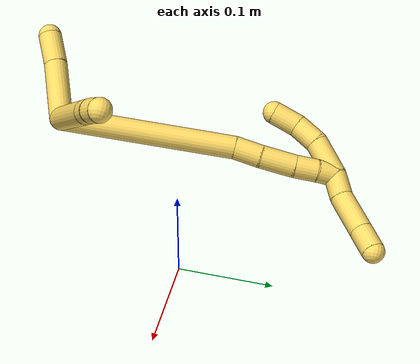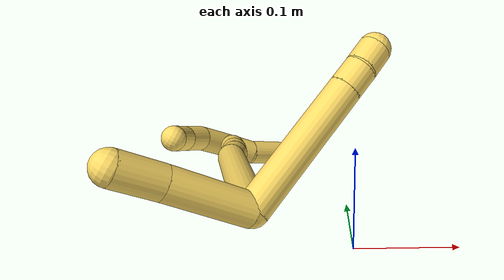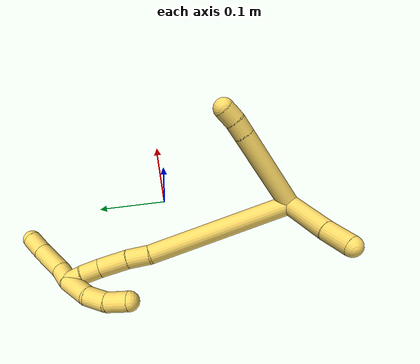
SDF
<sdf version="1.7">
 <world name="default">
  <model name="5">
   <static>0</static>
   <link name="5">
    <collision name="collision-cylinder-e_1_2_8">
     <pose>0.039223 0.036993 -0.009918 -1.83273 0.797313 -1.00416</pose>
     <geometry><cylinder><radius>0.0125</radius><length>0.109642</length></cylinder></geometry>
     <surface>
      <friction><ode><mu>1.16</mu><mu2>1.16</mu2><slip1>0</slip1><slip2>0</slip2></ode></friction>
      <contact><ode><kp>1e+06</kp><kd>1</kd><max_vel>0</max_vel><min_depth>0.001</min_depth></ode></contact>
     </surface>
    </collision>
    <visual name="visual-cylinder-e_1_2_8">
     <pose>0.039223 0.036993 -0.009918 -1.83273 0.797313 -1.00416</pose>
     <geometry><cylinder><radius>0.0125</radius><length>0.109642</length></cylinder></geometry>
     <material><ambient>1 0.858824 0.4 1</ambient></material>
    </visual>
    <collision name="collision-cylinder-e_2_8_9">
     <pose>0.08571 0.080851 -0.02167 -1.83203 0.796386 -1.00246</pose>
     <geometry><cylinder><radius>0.0125</radius><length>0.020322</length></cylinder></geometry>
     <surface>
      <friction><ode><mu>1.16</mu><mu2>1.16</mu2><slip1>0</slip1><slip2>0</slip2></ode></friction>
      <contact><ode><kp>1e+06</kp><kd>1</kd><max_vel>0</max_vel><min_depth>0.001</min_depth></ode></contact>
     </surface>
    </collision>
    <visual name="visual-cylinder-e_2_8_9">
     <pose>0.08571 0.080851 -0.02167 -1.83203 0.796386 -1.00246</pose>
     <geometry><cylinder><radius>0.0125</radius><length>0.020322</length></cylinder></geometry>
     <material><ambient>1 0.858824 0.4 1</ambient></material>
    </visual>
    <collision name="collision-cylinder-e_3_9_6">
     <pose>0.099061 0.095472 -0.025278 -1.79552 0.653112 -0.80346</pose>
     <geometry><cylinder><radius>0.0125</radius><length>0.020036</length></cylinder></geometry>
     <surface>
      <friction><ode><mu>1.16</mu><mu2>1.16</mu2><slip1>0</slip1><slip2>0</slip2></ode></friction>
      <contact><ode><kp>1e+06</kp><kd>1</kd><max_vel>0</max_vel><min_depth>0.001</min_depth></ode></contact>
     </surface>
    </collision>
    <visual name="visual-cylinder-e_3_9_6">
     <pose>0.099061 0.095472 -0.025278 -1.79552 0.653112 -0.80346</pose>
     <geometry><cylinder><radius>0.0125</radius><length>0.020036</length></cylinder></geometry>
     <material><ambient>1 0.858824 0.4 1</ambient></material>
    </visual>
    <collision name="collision-cylinder-e_1_2_10">
     <pose>0.001132 -0.01065 0.030559 0.335345 0.034968 0.005919</pose>
     <geometry><cylinder><radius>0.0125</radius><length>0.064763</length></cylinder></geometry>
     <surface>
      <friction><ode><mu>1.16</mu><mu2>1.16</mu2><slip1>0</slip1><slip2>0</slip2></ode></friction>
      <contact><ode><kp>1e+06</kp><kd>1</kd><max_vel>0</max_vel><min_depth>0.001</min_depth></ode></contact>
     </surface>
    </collision>
    <visual name="visual-cylinder-e_1_2_10">
     <pose>0.001132 -0.01065 0.030559 0.335345 0.034968 0.005919</pose>
     <geometry><cylinder><radius>0.0125</radius><length>0.064763</length></cylinder></geometry>
     <material><ambient>1 0.858824 0.4 1</ambient></material>
    </visual>
    <collision name="collision-cylinder-e_2_10_5">
     <pose>0.003383 -0.028411 0.077199 0.416361 0.063547 0.013428</pose>
     <geometry><cylinder><radius>0.0125</radius><length>0.035237</length></cylinder></geometry>
     <surface>
      <friction><ode><mu>1.16</mu><mu2>1.16</mu2><slip1>0</slip1><slip2>0</slip2></ode></friction>
      <contact><ode><kp>1e+06</kp><kd>1</kd><max_vel>0</max_vel><min_depth>0.001</min_depth></ode></contact>
     </surface>
    </collision>
    <visual name="visual-cylinder-e_2_10_5">
     <pose>0.003383 -0.028411 0.077199 0.416361 0.063547 0.013428</pose>
     <geometry><cylinder><radius>0.0125</radius><length>0.035237</length></cylinder></geometry>
     <material><ambient>1 0.858824 0.4 1</ambient></material>
    </visual>
    <collision name="collision-cylinder-e_1_2_11">
     <pose>-0.040496 0.084266 0.004364 -1.51906 -0.447466 0.425587</pose>
     <geometry><cylinder><radius>0.0125</radius><length>0.187187</length></cylinder></geometry>
     <surface>
      <friction><ode><mu>1.16</mu><mu2>1.16</mu2><slip1>0</slip1><slip2>0</slip2></ode></friction>
      <contact><ode><kp>1e+06</kp><kd>1</kd><max_vel>0</max_vel><min_depth>0.001</min_depth></ode></contact>
     </surface>
    </collision>
    <visual name="visual-cylinder-e_1_2_11">
     <pose>-0.040496 0.084266 0.004364 -1.51906 -0.447466 0.425587</pose>
     <geometry><cylinder><radius>0.0125</radius><length>0.187187</length></cylinder></geometry>
     <material><ambient>1 0.858824 0.4 1</ambient></material>
    </visual>
    <collision name="collision-cylinder-e_2_11_12">
     <pose>-0.086845 0.181839 0.006704 -1.72167 -0.410127 0.474862</pose>
     <geometry><cylinder><radius>0.0125</radius><length>0.029355</length></cylinder></geometry>
     <surface>
      <friction><ode><mu>1.16</mu><mu2>1.16</mu2><slip1>0</slip1><slip2>0</slip2></ode></friction>
      <contact><ode><kp>1e+06</kp><kd>1</kd><max_vel>0</max_vel><min_depth>0.001</min_depth></ode></contact>
     </surface>
    </collision>
    <visual name="visual-cylinder-e_2_11_12">
     <pose>-0.086845 0.181839 0.006704 -1.72167 -0.410127 0.474862</pose>
     <geometry><cylinder><radius>0.0125</radius><length>0.029355</length></cylinder></geometry>
     <material><ambient>1 0.858824 0.4 1</ambient></material>
    </visual>
    <collision name="collision-cylinder-e_3_12_13">
     <pose>-0.101476 0.211853 0.003524 -1.63996 -0.482815 0.515948</pose>
     <geometry><cylinder><radius>0.0125</radius><length>0.037816</length></cylinder></geometry>
     <surface>
      <friction><ode><mu>1.16</mu><mu2>1.16</mu2><slip1>0</slip1><slip2>0</slip2></ode></friction>
      <contact><ode><kp>1e+06</kp><kd>1</kd><max_vel>0</max_vel><min_depth>0.001</min_depth></ode></contact>
     </surface>
    </collision>
    <visual name="visual-cylinder-e_3_12_13">
     <pose>-0.101476 0.211853 0.003524 -1.63996 -0.482815 0.515948</pose>
     <geometry><cylinder><radius>0.0125</radius><length>0.037816</length></cylinder></geometry>
     <material><ambient>1 0.858824 0.4 1</ambient></material>
    </visual>
    <collision name="collision-cylinder-e_4_13_14">
     <pose>-0.116024 0.239516 0.002653 -1.54464 -0.484621 0.472574</pose>
     <geometry><cylinder><radius>0.0125</radius><length>0.024771</length></cylinder></geometry>
     <surface>
      <friction><ode><mu>1.16</mu><mu2>1.16</mu2><slip1>0</slip1><slip2>0</slip2></ode></friction>
      <contact><ode><kp>1e+06</kp><kd>1</kd><max_vel>0</max_vel><min_depth>0.001</min_depth></ode></contact>
     </surface>
    </collision>
    <visual name="visual-cylinder-e_4_13_14">
     <pose>-0.116024 0.239516 0.002653 -1.54464 -0.484621 0.472574</pose>
     <geometry><cylinder><radius>0.0125</radius><length>0.024771</length></cylinder></geometry>
     <material><ambient>1 0.858824 0.4 1</ambient></material>
    </visual>
    <collision name="collision-cylinder-e_5_14_1">
     <pose>-0.127692 0.259078 0.00316 -1.54518 -0.600582 0.586256</pose>
     <geometry><cylinder><radius>0.0125</radius><length>0.020871</length></cylinder></geometry>
     <surface>
      <friction><ode><mu>1.16</mu><mu2>1.16</mu2><slip1>0</slip1><slip2>0</slip2></ode></friction>
      <contact><ode><kp>1e+06</kp><kd>1</kd><max_vel>0</max_vel><min_depth>0.001</min_depth></ode></contact>
     </surface>
    </collision>
    <visual name="visual-cylinder-e_5_14_1">
     <pose>-0.127692 0.259078 0.00316 -1.54518 -0.600582 0.586256</pose>
     <geometry><cylinder><radius>0.0125</radius><length>0.020871</length></cylinder></geometry>
     <material><ambient>1 0.858824 0.4 1</ambient></material>
    </visual>
    <collision name="collision-cylinder-e_1_1_15">
     <pose>-0.134097 0.273222 -0.008623 -2.70938 -0.038384 0.174421</pose>
     <geometry><cylinder><radius>0.0125</radius><length>0.026459</length></cylinder></geometry>
     <surface>
      <friction><ode><mu>1.16</mu><mu2>1.16</mu2><slip1>0</slip1><slip2>0</slip2></ode></friction>
      <contact><ode><kp>1e+06</kp><kd>1</kd><max_vel>0</max_vel><min_depth>0.001</min_depth></ode></contact>
     </surface>
    </collision>
    <visual name="visual-cylinder-e_1_1_15">
     <pose>-0.134097 0.273222 -0.008623 -2.70938 -0.038384 0.174421</pose>
     <geometry><cylinder><radius>0.0125</radius><length>0.026459</length></cylinder></geometry>
     <material><ambient>1 0.858824 0.4 1</ambient></material>
    </visual>
    <collision name="collision-cylinder-e_2_15_16">
     <pose>-0.133158 0.292649 -0.038449 -2.47957 0.06391 -0.1855</pose>
     <geometry><cylinder><radius>0.0125</radius><length>0.045282</length></cylinder></geometry>
     <surface>
      <friction><ode><mu>1.16</mu><mu2>1.16</mu2><slip1>0</slip1><slip2>0</slip2></ode></friction>
      <contact><ode><kp>1e+06</kp><kd>1</kd><max_vel>0</max_vel><min_depth>0.001</min_depth></ode></contact>
     </surface>
    </collision>
    <visual name="visual-cylinder-e_2_15_16">
     <pose>-0.133158 0.292649 -0.038449 -2.47957 0.06391 -0.1855</pose>
     <geometry><cylinder><radius>0.0125</radius><length>0.045282</length></cylinder></geometry>
     <material><ambient>1 0.858824 0.4 1</ambient></material>
    </visual>
    <collision name="collision-cylinder-e_3_16_4">
     <pose>-0.12942 0.315164 -0.067224 -2.47445 0.16297 -0.462903</pose>
     <geometry><cylinder><radius>0.0125</radius><length>0.028259</length></cylinder></geometry>
     <surface>
      <friction><ode><mu>1.16</mu><mu2>1.16</mu2><slip1>0</slip1><slip2>0</slip2></ode></friction>
      <contact><ode><kp>1e+06</kp><kd>1</kd><max_vel>0</max_vel><min_depth>0.001</min_depth></ode></contact>
     </surface>
    </collision>
    <visual name="visual-cylinder-e_3_16_4">
     <pose>-0.12942 0.315164 -0.067224 -2.47445 0.16297 -0.462903</pose>
     <geometry><cylinder><radius>0.0125</radius><length>0.028259</length></cylinder></geometry>
     <material><ambient>1 0.858824 0.4 1</ambient></material>
    </visual>
    <collision name="collision-cylinder-e_1_1_17">
     <pose>-0.130295 0.255432 0.020049 0.633863 0.157926 0.051894</pose>
     <geometry><cylinder><radius>0.0125</radius><length>0.041894</length></cylinder></geometry>
     <surface>
      <friction><ode><mu>1.16</mu><mu2>1.16</mu2><slip1>0</slip1><slip2>0</slip2></ode></friction>
      <contact><ode><kp>1e+06</kp><kd>1</kd><max_vel>0</max_vel><min_depth>0.001</min_depth></ode></contact>
     </surface>
    </collision>
    <visual name="visual-cylinder-e_1_1_17">
     <pose>-0.130295 0.255432 0.020049 0.633863 0.157926 0.051894</pose>
     <geometry><cylinder><radius>0.0125</radius><length>0.041894</length></cylinder></geometry>
     <material><ambient>1 0.858824 0.4 1</ambient></material>
    </visual>
    <collision name="collision-cylinder-e_2_17_18">
     <pose>-0.124505 0.231624 0.044677 0.967605 0.176001 0.092654</pose>
     <geometry><cylinder><radius>0.0125</radius><length>0.028507</length></cylinder></geometry>
     <surface>
      <friction><ode><mu>1.16</mu><mu2>1.16</mu2><slip1>0</slip1><slip2>0</slip2></ode></friction>
      <contact><ode><kp>1e+06</kp><kd>1</kd><max_vel>0</max_vel><min_depth>0.001</min_depth></ode></contact>
     </surface>
    </collision>
    <visual name="visual-cylinder-e_2_17_18">
     <pose>-0.124505 0.231624 0.044677 0.967605 0.176001 0.092654</pose>
     <geometry><cylinder><radius>0.0125</radius><length>0.028507</length></cylinder></geometry>
     <material><ambient>1 0.858824 0.4 1</ambient></material>
    </visual>
    <collision name="collision-cylinder-e_3_18_3">
     <pose>-0.116346 0.207282 0.057486 1.2084 0.392666 0.272896</pose>
     <geometry><cylinder><radius>0.0125</radius><length>0.029599</length></cylinder></geometry>
     <surface>
      <friction><ode><mu>1.16</mu><mu2>1.16</mu2><slip1>0</slip1><slip2>0</slip2></ode></friction>
      <contact><ode><kp>1e+06</kp><kd>1</kd><max_vel>0</max_vel><min_depth>0.001</min_depth></ode></contact>
     </surface>
    </collision>
    <visual name="visual-cylinder-e_3_18_3">
     <pose>-0.116346 0.207282 0.057486 1.2084 0.392666 0.272896</pose>
     <geometry><cylinder><radius>0.0125</radius><length>0.029599</length></cylinder></geometry>
     <material><ambient>1 0.858824 0.4 1</ambient></material>
    </visual>
    <collision name="collision-sphere-3">
     <pose>-0.110683 0.194497 0.062333 0 -0 0</pose>
     <geometry><sphere><radius>0.0125</radius></sphere></geometry>
     <surface>
      <friction><ode><mu>1.16</mu><mu2>1.16</mu2><slip1>0</slip1><slip2>0</slip2></ode></friction>
      <contact><ode><kp>1e+06</kp><kd>1</kd><max_vel>0</max_vel><min_depth>0.001</min_depth></ode></contact>
     </surface>
    </collision>
    <visual name="visual-sphere-3">
     <pose>-0.110683 0.194497 0.062333 0 -0 0</pose>
     <geometry><sphere><radius>0.0125</radius></sphere></geometry>
     <material><ambient>1 0.858824 0.4 1</ambient></material>
    </visual>
    <collision name="collision-sphere-5">
     <pose>0.004502 -0.035522 0.09328 0 -0 0</pose>
     <geometry><sphere><radius>0.0125</radius></sphere></geometry>
     <surface>
      <friction><ode><mu>1.16</mu><mu2>1.16</mu2><slip1>0</slip1><slip2>0</slip2></ode></friction>
      <contact><ode><kp>1e+06</kp><kd>1</kd><max_vel>0</max_vel><min_depth>0.001</min_depth></ode></contact>
     </surface>
    </collision>
    <visual name="visual-sphere-5">
     <pose>0.004502 -0.035522 0.09328 0 -0 0</pose>
     <geometry><sphere><radius>0.0125</radius></sphere></geometry>
     <material><ambient>1 0.858824 0.4 1</ambient></material>
    </visual>
    <collision name="collision-sphere-10">
     <pose>0.002264 -0.0213 0.061118 0 -0 0</pose>
     <geometry><sphere><radius>0.0125</radius></sphere></geometry>
     <surface>
      <friction><ode><mu>1.16</mu><mu2>1.16</mu2><slip1>0</slip1><slip2>0</slip2></ode></friction>
      <contact><ode><kp>1e+06</kp><kd>1</kd><max_vel>0</max_vel><min_depth>0.001</min_depth></ode></contact>
     </surface>
    </collision>
    <visual name="visual-sphere-10">
     <pose>0.002264 -0.0213 0.061118 0 -0 0</pose>
     <geometry><sphere><radius>0.0125</radius></sphere></geometry>
     <material><ambient>1 0.858824 0.4 1</ambient></material>
    </visual>
    <collision name="collision-sphere-6">
     <pose>0.105149 0.103228 -0.027051 0 -0 0</pose>
     <geometry><sphere><radius>0.0125</radius></sphere></geometry>
     <surface>
      <friction><ode><mu>1.16</mu><mu2>1.16</mu2><slip1>0</slip1><slip2>0</slip2></ode></friction>
      <contact><ode><kp>1e+06</kp><kd>1</kd><max_vel>0</max_vel><min_depth>0.001</min_depth></ode></contact>
     </surface>
    </collision>
    <visual name="visual-sphere-6">
     <pose>0.105149 0.103228 -0.027051 0 -0 0</pose>
     <geometry><sphere><radius>0.0125</radius></sphere></geometry>
     <material><ambient>1 0.858824 0.4 1</ambient></material>
    </visual>
    <collision name="collision-sphere-9">
     <pose>0.092974 0.087716 -0.023505 0 -0 0</pose>
     <geometry><sphere><radius>0.0125</radius></sphere></geometry>
     <surface>
      <friction><ode><mu>1.16</mu><mu2>1.16</mu2><slip1>0</slip1><slip2>0</slip2></ode></friction>
      <contact><ode><kp>1e+06</kp><kd>1</kd><max_vel>0</max_vel><min_depth>0.001</min_depth></ode></contact>
     </surface>
    </collision>
    <visual name="visual-sphere-9">
     <pose>0.092974 0.087716 -0.023505 0 -0 0</pose>
     <geometry><sphere><radius>0.0125</radius></sphere></geometry>
     <material><ambient>1 0.858824 0.4 1</ambient></material>
    </visual>
    <collision name="collision-sphere-2">
     <geometry><sphere><radius>0.0125</radius></sphere></geometry>
     <surface>
      <friction><ode><mu>1.16</mu><mu2>1.16</mu2><slip1>0</slip1><slip2>0</slip2></ode></friction>
      <contact><ode><kp>1e+06</kp><kd>1</kd><max_vel>0</max_vel><min_depth>0.001</min_depth></ode></contact>
     </surface>
    </collision>
    <visual name="visual-sphere-2">
     <geometry><sphere><radius>0.0125</radius></sphere></geometry>
     <material><ambient>1 0.858824 0.4 1</ambient></material>
    </visual>
    <collision name="collision-sphere-8">
     <pose>0.078447 0.073987 -0.019835 0 -0 0</pose>
     <geometry><sphere><radius>0.0125</radius></sphere></geometry>
     <surface>
      <friction><ode><mu>1.16</mu><mu2>1.16</mu2><slip1>0</slip1><slip2>0</slip2></ode></friction>
      <contact><ode><kp>1e+06</kp><kd>1</kd><max_vel>0</max_vel><min_depth>0.001</min_depth></ode></contact>
     </surface>
    </collision>
    <visual name="visual-sphere-8">
     <pose>0.078447 0.073987 -0.019835 0 -0 0</pose>
     <geometry><sphere><radius>0.0125</radius></sphere></geometry>
     <material><ambient>1 0.858824 0.4 1</ambient></material>
    </visual>
    <collision name="collision-sphere-11">
     <pose>-0.080992 0.168532 0.008727 0 -0 0</pose>
     <geometry><sphere><radius>0.0125</radius></sphere></geometry>
     <surface>
      <friction><ode><mu>1.16</mu><mu2>1.16</mu2><slip1>0</slip1><slip2>0</slip2></ode></friction>
      <contact><ode><kp>1e+06</kp><kd>1</kd><max_vel>0</max_vel><min_depth>0.001</min_depth></ode></contact>
     </surface>
    </collision>
    <visual name="visual-sphere-11">
     <pose>-0.080992 0.168532 0.008727 0 -0 0</pose>
     <geometry><sphere><radius>0.0125</radius></sphere></geometry>
     <material><ambient>1 0.858824 0.4 1</ambient></material>
    </visual>
    <collision name="collision-sphere-12">
     <pose>-0.092697 0.195147 0.004681 0 -0 0</pose>
     <geometry><sphere><radius>0.0125</radius></sphere></geometry>
     <surface>
      <friction><ode><mu>1.16</mu><mu2>1.16</mu2><slip1>0</slip1><slip2>0</slip2></ode></friction>
      <contact><ode><kp>1e+06</kp><kd>1</kd><max_vel>0</max_vel><min_depth>0.001</min_depth></ode></contact>
     </surface>
    </collision>
    <visual name="visual-sphere-12">
     <pose>-0.092697 0.195147 0.004681 0 -0 0</pose>
     <geometry><sphere><radius>0.0125</radius></sphere></geometry>
     <material><ambient>1 0.858824 0.4 1</ambient></material>
    </visual>
    <collision name="collision-sphere-13">
     <pose>-0.110254 0.22856 0.002366 0 -0 0</pose>
     <geometry><sphere><radius>0.0125</radius></sphere></geometry>
     <surface>
      <friction><ode><mu>1.16</mu><mu2>1.16</mu2><slip1>0</slip1><slip2>0</slip2></ode></friction>
      <contact><ode><kp>1e+06</kp><kd>1</kd><max_vel>0</max_vel><min_depth>0.001</min_depth></ode></contact>
     </surface>
    </collision>
    <visual name="visual-sphere-13">
     <pose>-0.110254 0.22856 0.002366 0 -0 0</pose>
     <geometry><sphere><radius>0.0125</radius></sphere></geometry>
     <material><ambient>1 0.858824 0.4 1</ambient></material>
    </visual>
    <collision name="collision-sphere-14">
     <pose>-0.121794 0.250471 0.00294 0 -0 0</pose>
     <geometry><sphere><radius>0.0125</radius></sphere></geometry>
     <surface>
      <friction><ode><mu>1.16</mu><mu2>1.16</mu2><slip1>0</slip1><slip2>0</slip2></ode></friction>
      <contact><ode><kp>1e+06</kp><kd>1</kd><max_vel>0</max_vel><min_depth>0.001</min_depth></ode></contact>
     </surface>
    </collision>
    <visual name="visual-sphere-14">
     <pose>-0.121794 0.250471 0.00294 0 -0 0</pose>
     <geometry><sphere><radius>0.0125</radius></sphere></geometry>
     <material><ambient>1 0.858824 0.4 1</ambient></material>
    </visual>
    <collision name="collision-sphere-1">
     <pose>-0.133589 0.267684 0.003381 0 -0 0</pose>
     <geometry><sphere><radius>0.0125</radius></sphere></geometry>
     <surface>
      <friction><ode><mu>1.16</mu><mu2>1.16</mu2><slip1>0</slip1><slip2>0</slip2></ode></friction>
      <contact><ode><kp>1e+06</kp><kd>1</kd><max_vel>0</max_vel><min_depth>0.001</min_depth></ode></contact>
     </surface>
    </collision>
    <visual name="visual-sphere-1">
     <pose>-0.133589 0.267684 0.003381 0 -0 0</pose>
     <geometry><sphere><radius>0.0125</radius></sphere></geometry>
     <material><ambient>1 0.858824 0.4 1</ambient></material>
    </visual>
    <collision name="collision-sphere-18">
     <pose>-0.122009 0.220067 0.052638 0 -0 0</pose>
     <geometry><sphere><radius>0.0125</radius></sphere></geometry>
     <surface>
      <friction><ode><mu>1.16</mu><mu2>1.16</mu2><slip1>0</slip1><slip2>0</slip2></ode></friction>
      <contact><ode><kp>1e+06</kp><kd>1</kd><max_vel>0</max_vel><min_depth>0.001</min_depth></ode></contact>
     </surface>
    </collision>
    <visual name="visual-sphere-18">
     <pose>-0.122009 0.220067 0.052638 0 -0 0</pose>
     <geometry><sphere><radius>0.0125</radius></sphere></geometry>
     <material><ambient>1 0.858824 0.4 1</ambient></material>
    </visual>
    <collision name="collision-sphere-15">
     <pose>-0.134604 0.278759 -0.020627 0 -0 0</pose>
     <geometry><sphere><radius>0.0125</radius></sphere></geometry>
     <surface>
      <friction><ode><mu>1.16</mu><mu2>1.16</mu2><slip1>0</slip1><slip2>0</slip2></ode></friction>
      <contact><ode><kp>1e+06</kp><kd>1</kd><max_vel>0</max_vel><min_depth>0.001</min_depth></ode></contact>
     </surface>
    </collision>
    <visual name="visual-sphere-15">
     <pose>-0.134604 0.278759 -0.020627 0 -0 0</pose>
     <geometry><sphere><radius>0.0125</radius></sphere></geometry>
     <material><ambient>1 0.858824 0.4 1</ambient></material>
    </visual>
    <collision name="collision-sphere-16">
     <pose>-0.131712 0.306538 -0.056271 0 -0 0</pose>
     <geometry><sphere><radius>0.0125</radius></sphere></geometry>
     <surface>
      <friction><ode><mu>1.16</mu><mu2>1.16</mu2><slip1>0</slip1><slip2>0</slip2></ode></friction>
      <contact><ode><kp>1e+06</kp><kd>1</kd><max_vel>0</max_vel><min_depth>0.001</min_depth></ode></contact>
     </surface>
    </collision>
    <visual name="visual-sphere-16">
     <pose>-0.131712 0.306538 -0.056271 0 -0 0</pose>
     <geometry><sphere><radius>0.0125</radius></sphere></geometry>
     <material><ambient>1 0.858824 0.4 1</ambient></material>
    </visual>
    <collision name="collision-sphere-4">
     <pose>-0.127127 0.323791 -0.078177 0 -0 0</pose>
     <geometry><sphere><radius>0.0125</radius></sphere></geometry>
     <surface>
      <friction><ode><mu>1.16</mu><mu2>1.16</mu2><slip1>0</slip1><slip2>0</slip2></ode></friction>
      <contact><ode><kp>1e+06</kp><kd>1</kd><max_vel>0</max_vel><min_depth>0.001</min_depth></ode></contact>
     </surface>
    </collision>
    <visual name="visual-sphere-4">
     <pose>-0.127127 0.323791 -0.078177 0 -0 0</pose>
     <geometry><sphere><radius>0.0125</radius></sphere></geometry>
     <material><ambient>1 0.858824 0.4 1</ambient></material>
    </visual>
    <collision name="collision-sphere-17">
     <pose>-0.127 0.243181 0.036717 0 -0 0</pose>
     <geometry><sphere><radius>0.0125</radius></sphere></geometry>
     <surface>
      <friction><ode><mu>1.16</mu><mu2>1.16</mu2><slip1>0</slip1><slip2>0</slip2></ode></friction>
      <contact><ode><kp>1e+06</kp><kd>1</kd><max_vel>0</max_vel><min_depth>0.001</min_depth></ode></contact>
     </surface>
    </collision>
    <visual name="visual-sphere-17">
     <pose>-0.127 0.243181 0.036717 0 -0 0</pose>
     <geometry><sphere><radius>0.0125</radius></sphere></geometry>
     <material><ambient>1 0.858824 0.4 1</ambient></material>
    </visual>
    <inertial>
     <pose>-0.049297 0.132281 0.005186 0 -0 0</pose>
     <mass>0.75</mass>
     <inertia>
      <ixx>0.00071</ixx>
      <ixy>0</ixy>
      <ixz>0</ixz>
      <iyy>0.000372</iyy>
      <iyz>0</iyz>
      <izz>-0.000417</izz>
     </inertia>
    </inertial>
   </link>
   <pose>-0.081709 -0.149897 0.109592 0.359548 -0.973062 -0.405912</pose>
  </model>
 </world>
</sdf>
